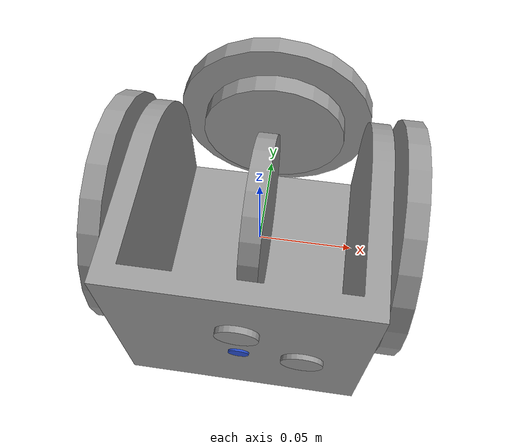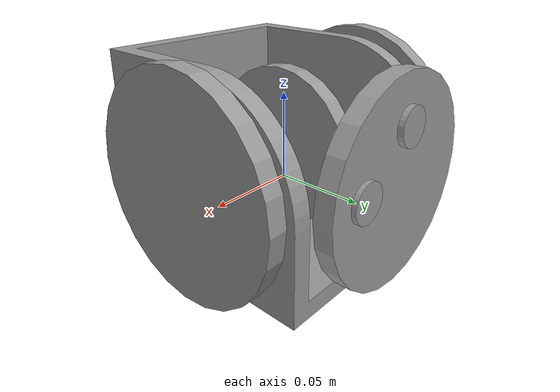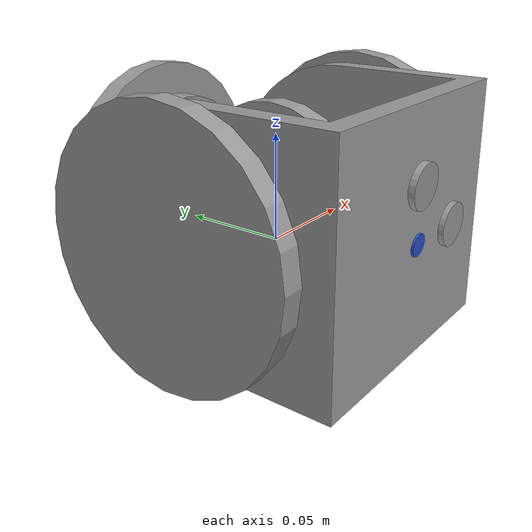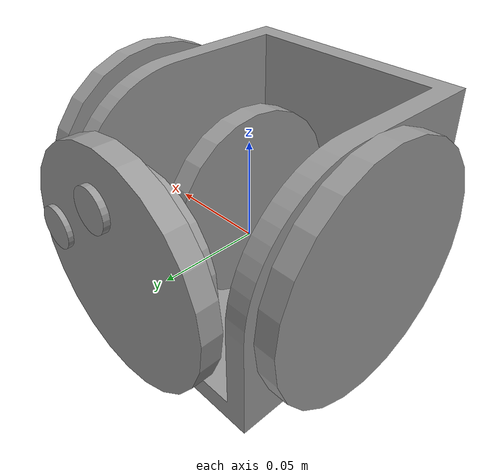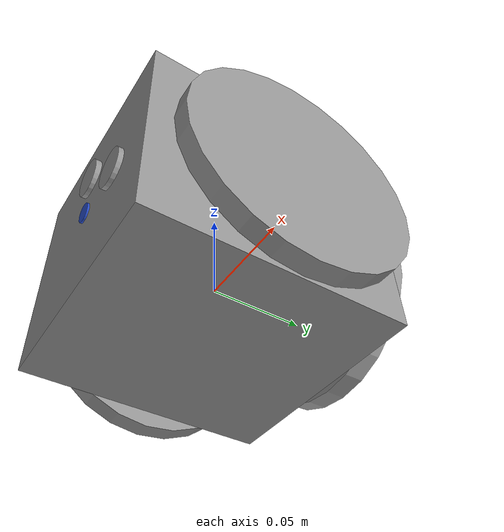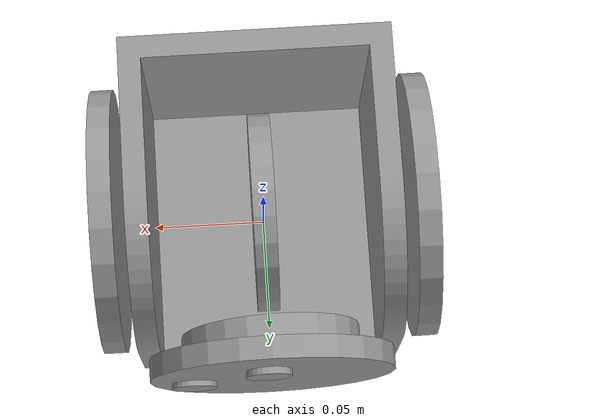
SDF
<?xml version='1.0'?>
<sdf version='1.6'>
  <model name='ditto19'>
    <link name='body'>
      <inertial>
        <mass>5</mass>
        <inertia>
          <ixx>0.166667</ixx>
          <ixy>0</ixy>
          <ixz>0</ixz>
          <iyy>0.166667</iyy>
          <iyz>0</iyz>
          <izz>0.166667</izz>
        </inertia>
        <pose frame=''>0 0 0 0 -0 0</pose>
      </inertial>
      <pose frame=''>-0 -0 -0.036667 0 -0 0</pose>
      <gravity>1</gravity>
      <self_collide>0</self_collide>
      <kinematic>0</kinematic>
      <enable_wind>0</enable_wind>
      <visual name='visual'>
        <pose frame=''>0 0 0 0 -0 0</pose>
        <geometry>
          <mesh>
            <uri>/home/xtreme/catkin_ws/src/Graduation CADs/OneDrive-2019-11-22/bodyCorrected.obj</uri>
            <scale>0.001 0.001 0.001</scale>
          </mesh>
        </geometry>
        <material>
          <lighting>1</lighting>
          <script>
            <uri>file://media/materials/scripts/gazebo.material</uri>
            <name>Gazebo/Grey</name>
          </script>
          <shader type='pixel'>
            <normal_map>__default__</normal_map>
          </shader>
          <ambient>0.3 0.3 0.3 1</ambient>
          <diffuse>0.7 0.7 0.7 1</diffuse>
          <specular>0.01 0.01 0.01 1</specular>
          <emissive>0 0 0 1</emissive>
        </material>
        <transparency>0</transparency>
        <cast_shadows>1</cast_shadows>
      </visual>
      <collision name='collision'>
        <laser_retro>0</laser_retro>
        <max_contacts>10</max_contacts>
        <pose frame=''>0 0 0 0 -0 0</pose>
        <geometry>
          <mesh>
            <uri>/home/xtreme/catkin_ws/src/Graduation CADs/OneDrive-2019-11-22/bodyCorrected.obj</uri>
            <scale>0.001 0.001 0.001</scale>
          </mesh>
        </geometry>
        <surface>
          <friction>
            <ode>
              <mu>1</mu>
              <mu2>1</mu2>
              <fdir1>0 0 0</fdir1>
              <slip1>0</slip1>
              <slip2>0</slip2>
            </ode>
            <torsional>
              <coefficient>1</coefficient>
              <patch_radius>0</patch_radius>
              <surface_radius>0</surface_radius>
              <use_patch_radius>1</use_patch_radius>
              <ode>
                <slip>0</slip>
              </ode>
            </torsional>
          </friction>
          <bounce>
            <restitution_coefficient>0</restitution_coefficient>
            <threshold>1e+06</threshold>
          </bounce>
          <contact>
            <collide_without_contact>0</collide_without_contact>
            <collide_without_contact_bitmask>1</collide_without_contact_bitmask>
            <collide_bitmask>1</collide_bitmask>
            <ode>
              <soft_cfm>0</soft_cfm>
              <soft_erp>0.2</soft_erp>
              <kp>1e+13</kp>
              <kd>1</kd>
              <max_vel>0.01</max_vel>
              <min_depth>0</min_depth>
            </ode>
            <bullet>
              <split_impulse>1</split_impulse>
              <split_impulse_penetration_threshold>-0.01</split_impulse_penetration_threshold>
              <soft_cfm>0</soft_cfm>
              <soft_erp>0.2</soft_erp>
              <kp>1e+13</kp>
              <kd>1</kd>
            </bullet>
          </contact>
        </surface>
      </collision>
    </link>
    <link name='body_magnet_north'>
      <inertial>
        <mass>1e-07</mass>
        <inertia>
          <ixx>0</ixx>
          <ixy>0</ixy>
          <ixz>0</ixz>
          <iyy>0</iyy>
          <iyz>0</iyz>
          <izz>0</izz>
        </inertia>
        <pose frame=''>0 0 0 0 -0 0</pose>
      </inertial>
      <pose frame=''>0.03 -0.0715 0.015 1.62063 -3e-05 0.000164</pose>
      <gravity>1</gravity>
      <self_collide>0</self_collide>
      <kinematic>0</kinematic>
      <enable_wind>0</enable_wind>
      <sensor name='my_plugin_2' type='contact'>
        <plugin name='ContactPlugin_2' filename='libcontact.so'>
          <robotNamespace>/</robotNamespace>
          <magnetic_face>body_magnet_south</magnetic_face>
        </plugin>
        <contact>
          <collision>box_collision</collision>
          <topic>__default_topic__</topic>
        </contact>
        <update_rate>5</update_rate>
      </sensor>
      <visual name='visual'>
        <pose frame=''>0 0 0 0 -0 0</pose>
        <geometry>
          <cylinder>
            <radius>0.01</radius>
            <length>0.0025</length>
          </cylinder>
        </geometry>
        <material>
          <lighting>1</lighting>
          <script>
            <uri>file://media/materials/scripts/gazebo.material</uri>
            <name>Gazebo/Grey</name>
          </script>
          <shader type='pixel'>
            <normal_map>__default__</normal_map>
          </shader>
          <ambient>0.3 0.3 0.3 1</ambient>
          <diffuse>0.7 0.7 0.7 1</diffuse>
          <specular>0.01 0.01 0.01 1</specular>
          <emissive>0 0 0 1</emissive>
        </material>
        <transparency>0</transparency>
        <cast_shadows>1</cast_shadows>
      </visual>
      <collision name='box_collision'>
        <laser_retro>0</laser_retro>
        <max_contacts>10</max_contacts>
        <pose frame=''>0 0 0 0 -0 0</pose>
        <geometry>
          <cylinder>
            <radius>0.01</radius>
            <length>0.0025</length>
          </cylinder>
        </geometry>
        <surface>
          <friction>
            <ode>
              <mu>1</mu>
              <mu2>1</mu2>
              <fdir1>0 0 0</fdir1>
              <slip1>0</slip1>
              <slip2>0</slip2>
            </ode>
            <torsional>
              <coefficient>1</coefficient>
              <patch_radius>0</patch_radius>
              <surface_radius>0</surface_radius>
              <use_patch_radius>1</use_patch_radius>
              <ode>
                <slip>0</slip>
              </ode>
            </torsional>
          </friction>
          <bounce>
            <restitution_coefficient>0</restitution_coefficient>
            <threshold>1e+06</threshold>
          </bounce>
          <contact>
            <collide_without_contact>0</collide_without_contact>
            <collide_without_contact_bitmask>1</collide_without_contact_bitmask>
            <collide_bitmask>1</collide_bitmask>
            <ode>
              <soft_cfm>0</soft_cfm>
              <soft_erp>0.2</soft_erp>
              <kp>1e+13</kp>
              <kd>1</kd>
              <max_vel>0.01</max_vel>
              <min_depth>0</min_depth>
            </ode>
            <bullet>
              <split_impulse>1</split_impulse>
              <split_impulse_penetration_threshold>-0.01</split_impulse_penetration_threshold>
              <soft_cfm>0</soft_cfm>
              <soft_erp>0.2</soft_erp>
              <kp>1e+13</kp>
              <kd>1</kd>
            </bullet>
          </contact>
        </surface>
      </collision>
    </link>
    <link name='body_magnet_south'>
      <inertial>
        <mass>1e-07</mass>
        <inertia>
          <ixx>0</ixx>
          <ixy>0</ixy>
          <ixz>0</ixz>
          <iyy>0</iyy>
          <iyz>0</iyz>
          <izz>0</izz>
        </inertia>
        <pose frame=''>0 0 0 0 -0 0</pose>
      </inertial>
      <pose frame=''>-0 -0.0715 0.04 1.63618 -4.3e-05 0.000218</pose>
      <gravity>1</gravity>
      <self_collide>0</self_collide>
      <kinematic>0</kinematic>
      <enable_wind>0</enable_wind>
      <sensor name='my_plugin_2' type='contact'>
        <plugin name='ContactPlugin_2' filename='libcontact.so'>
          <robotNamespace>/</robotNamespace>
          <magnetic_face>body_magnet_north</magnetic_face>
        </plugin>
        <contact>
          <collision>box_collision</collision>
          <topic>__default_topic__</topic>
        </contact>
        <update_rate>5</update_rate>
      </sensor>
      <visual name='visual'>
        <pose frame=''>0 0 0 0 -0 0</pose>
        <geometry>
          <cylinder>
            <radius>0.01</radius>
            <length>0.003</length>
          </cylinder>
        </geometry>
        <material>
          <lighting>1</lighting>
          <script>
            <uri>file://media/materials/scripts/gazebo.material</uri>
            <name>Gazebo/Grey</name>
          </script>
          <shader type='pixel'>
            <normal_map>__default__</normal_map>
          </shader>
          <ambient>0.3 0.3 0.3 1</ambient>
          <diffuse>0.7 0.7 0.7 1</diffuse>
          <specular>0.01 0.01 0.01 1</specular>
          <emissive>0 0 0 1</emissive>
        </material>
        <transparency>0</transparency>
        <cast_shadows>1</cast_shadows>
      </visual>
      <collision name='box_collision'>
        <laser_retro>0</laser_retro>
        <max_contacts>10</max_contacts>
        <pose frame=''>0 0 0 0 -0 0</pose>
        <geometry>
          <cylinder>
            <radius>0.01</radius>
            <length>0.003</length>
          </cylinder>
        </geometry>
        <surface>
          <friction>
            <ode>
              <mu>1</mu>
              <mu2>1</mu2>
              <fdir1>0 0 0</fdir1>
              <slip1>0</slip1>
              <slip2>0</slip2>
            </ode>
            <torsional>
              <coefficient>1</coefficient>
              <patch_radius>0</patch_radius>
              <surface_radius>0</surface_radius>
              <use_patch_radius>1</use_patch_radius>
              <ode>
                <slip>0</slip>
              </ode>
            </torsional>
          </friction>
          <bounce>
            <restitution_coefficient>0</restitution_coefficient>
            <threshold>1e+06</threshold>
          </bounce>
          <contact>
            <collide_without_contact>0</collide_without_contact>
            <collide_without_contact_bitmask>1</collide_without_contact_bitmask>
            <collide_bitmask>1</collide_bitmask>
            <ode>
              <soft_cfm>0</soft_cfm>
              <soft_erp>0.2</soft_erp>
              <kp>1e+13</kp>
              <kd>1</kd>
              <max_vel>0.01</max_vel>
              <min_depth>0</min_depth>
            </ode>
            <bullet>
              <split_impulse>1</split_impulse>
              <split_impulse_penetration_threshold>-0.01</split_impulse_penetration_threshold>
              <soft_cfm>0</soft_cfm>
              <soft_erp>0.2</soft_erp>
              <kp>1e+13</kp>
              <kd>1</kd>
            </bullet>
          </contact>
        </surface>
      </collision>
    </link>
    <link name='hokuyo_sensor'>
      <inertial>
        <mass>1e-07</mass>
        <inertia>
          <ixx>0</ixx>
          <ixy>0</ixy>
          <ixz>0</ixz>
          <iyy>0</iyy>
          <iyz>0</iyz>
          <izz>0</izz>
        </inertia>
        <pose frame=''>0 0 0 0 -0 0</pose>
      </inertial>
      <pose frame=''>-0 -0.071 0.015 1.65062 -5.1e-05 0.000589</pose>
      <gravity>1</gravity>
      <self_collide>0</self_collide>
      <kinematic>0</kinematic>
      <enable_wind>0</enable_wind>
    <sensor type="ray" name="chassis_hokuyo_sensor">
   <pose>-0 -0.071 0.015 1.65062 -5.1e-05 0.000589</pose>
   <visualize>false</visualize>
   <update_rate>40</update_rate>
   <ray>
     <scan>
       <horizontal>
         <samples>720</samples>
         <resolution>1</resolution>
         <min_angle>-1.57</min_angle>
         <max_angle>1.57</max_angle>
        </horizontal>
      </scan>
     <range>
        <min>0.10</min>
        <max>10.0</max>
        <resolution>0.001</resolution>
      </range>
     </ray>
     <plugin name="gazebo_ros_head_hokuyo_controller"
          filename="libgazebo_ros_laser.so">
        <topicName>/scan</topicName>
        <frameName>hokuyo_sensor</frameName>
       </plugin>
      </sensor>
      <visual name='visual'>
        <pose frame=''>0 0 0 0 -0 0</pose>
        <geometry>
          <cylinder>
            <radius>0.005</radius>
            <length>0.001</length>
          </cylinder>
        </geometry>
        <material>
          <lighting>1</lighting>
          <script>
            <uri>file://media/materials/scripts/gazebo.material</uri>
            <name>Gazebo/Blue</name>
          </script>
          <shader type='pixel'>
            <normal_map>__default__</normal_map>
          </shader>
          <ambient>0.3 0.3 0.3 1</ambient>
          <diffuse>0.7 0.7 0.7 1</diffuse>
          <specular>0.01 0.01 0.01 1</specular>
          <emissive>0 0 0 1</emissive>
        </material>
        <transparency>0</transparency>
        <cast_shadows>1</cast_shadows>
      </visual>
      <collision name='box_collision'>
        <laser_retro>0</laser_retro>
        <max_contacts>10</max_contacts>
        <pose frame=''>0 0 0 0 -0 0</pose>
        <geometry>
          <cylinder>
            <radius>0.005</radius>
            <length>0.001</length>
          </cylinder>
        </geometry>
        <surface>
          <friction>
            <ode>
              <mu>1</mu>
              <mu2>1</mu2>
              <fdir1>0 0 0</fdir1>
              <slip1>0</slip1>
              <slip2>0</slip2>
            </ode>
            <torsional>
              <coefficient>1</coefficient>
              <patch_radius>0</patch_radius>
              <surface_radius>0</surface_radius>
              <use_patch_radius>1</use_patch_radius>
              <ode>
                <slip>0</slip>
              </ode>
            </torsional>
          </friction>
          <bounce>
            <restitution_coefficient>0</restitution_coefficient>
            <threshold>1e+06</threshold>
          </bounce>
          <contact>
            <collide_without_contact>0</collide_without_contact>
            <collide_without_contact_bitmask>1</collide_without_contact_bitmask>
            <collide_bitmask>1</collide_bitmask>
            <ode>
              <soft_cfm>0</soft_cfm>
              <soft_erp>0.2</soft_erp>
              <kp>1e+13</kp>
              <kd>1</kd>
              <max_vel>0.01</max_vel>
              <min_depth>0</min_depth>
            </ode>
            <bullet>
              <split_impulse>1</split_impulse>
              <split_impulse_penetration_threshold>-0.01</split_impulse_penetration_threshold>
              <soft_cfm>0</soft_cfm>
              <soft_erp>0.2</soft_erp>
              <kp>1e+13</kp>
              <kd>1</kd>
            </bullet>
          </contact>
        </surface>
      </collision>
    </link>
    <link name='face_pan'>
      <inertial>
        <mass>0.5</mass>
        <inertia>
          <ixx>0.145833</ixx>
          <ixy>0</ixy>
          <ixz>0</ixz>
          <iyy>0.145833</iyy>
          <iyz>0</iyz>
          <izz>0.125</izz>
        </inertia>
        <pose frame=''>0 0 0 0 -0 0</pose>
      </inertial>
      <pose frame=''>0 0.06 0.02 3.13999 1.52773 1.59125</pose>
      <gravity>1</gravity>
      <self_collide>0</self_collide>
      <kinematic>0</kinematic>
      <enable_wind>0</enable_wind>
      <visual name='visual'>
        <pose frame=''>0 0 0 0 -0 0</pose>
        <geometry>
          <cylinder>
            <radius>0.04</radius>
            <length>0.01</length>
          </cylinder>
        </geometry>
        <material>
          <lighting>1</lighting>
          <script>
            <uri>file://media/materials/scripts/gazebo.material</uri>
            <name>Gazebo/Grey</name>
          </script>
          <shader type='pixel'>
            <normal_map>__default__</normal_map>
          </shader>
          <ambient>0.3 0.3 0.3 1</ambient>
          <diffuse>0.7 0.7 0.7 1</diffuse>
          <specular>0.01 0.01 0.01 1</specular>
          <emissive>0 0 0 1</emissive>
        </material>
        <transparency>0</transparency>
        <cast_shadows>1</cast_shadows>
      </visual>
      <collision name='collision'>
        <laser_retro>0</laser_retro>
        <max_contacts>10</max_contacts>
        <pose frame=''>0 0 0 0 -0 0</pose>
        <geometry>
          <cylinder>
            <radius>0.04</radius>
            <length>0.01</length>
          </cylinder>
        </geometry>
        <surface>
          <friction>
            <ode>
              <mu>1</mu>
              <mu2>1</mu2>
              <fdir1>0 0 0</fdir1>
              <slip1>0</slip1>
              <slip2>0</slip2>
            </ode>
            <torsional>
              <coefficient>1</coefficient>
              <patch_radius>0</patch_radius>
              <surface_radius>0</surface_radius>
              <use_patch_radius>1</use_patch_radius>
              <ode>
                <slip>0</slip>
              </ode>
            </torsional>
          </friction>
          <bounce>
            <restitution_coefficient>0</restitution_coefficient>
            <threshold>1e+06</threshold>
          </bounce>
          <contact>
            <collide_without_contact>0</collide_without_contact>
            <collide_without_contact_bitmask>1</collide_without_contact_bitmask>
            <collide_bitmask>1</collide_bitmask>
            <ode>
              <soft_cfm>0</soft_cfm>
              <soft_erp>0.2</soft_erp>
              <kp>1e+13</kp>
              <kd>1</kd>
              <max_vel>0.01</max_vel>
              <min_depth>0</min_depth>
            </ode>
            <bullet>
              <split_impulse>1</split_impulse>
              <split_impulse_penetration_threshold>-0.01</split_impulse_penetration_threshold>
              <soft_cfm>0</soft_cfm>
              <soft_erp>0.2</soft_erp>
              <kp>1e+13</kp>
              <kd>1</kd>
            </bullet>
          </contact>
        </surface>
      </collision>
    </link>
    <link name='face_tilt'>
      <inertial>
        <mass>0.0001</mass>
        <inertia>
          <ixx>0.145833</ixx>
          <ixy>0</ixy>
          <ixz>0</ixz>
          <iyy>0.145833</iyy>
          <iyz>0</iyz>
          <izz>0.125</izz>
        </inertia>
        <pose frame=''>0 0 0 0 -0 0</pose>
      </inertial>
      <pose frame=''>-0 0 0.02 -3.14159 1.56989 -3.14159</pose>
      <gravity>1</gravity>
      <self_collide>0</self_collide>
      <kinematic>0</kinematic>
      <enable_wind>0</enable_wind>
      <visual name='visual'>
        <pose frame=''>0 0 0 0 -0 0</pose>
        <geometry>
          <cylinder>
            <radius>0.045</radius>
            <length>0.01</length>
          </cylinder>
        </geometry>
        <material>
          <lighting>1</lighting>
          <script>
            <uri>file://media/materials/scripts/gazebo.material</uri>
            <name>Gazebo/Grey</name>
          </script>
          <shader type='pixel'>
            <normal_map>__default__</normal_map>
          </shader>
          <ambient>0.3 0.3 0.3 1</ambient>
          <diffuse>0.7 0.7 0.7 1</diffuse>
          <specular>0.01 0.01 0.01 1</specular>
          <emissive>0 0 0 1</emissive>
        </material>
        <transparency>0</transparency>
        <cast_shadows>1</cast_shadows>
      </visual>
      <collision name='collision'>
        <laser_retro>0</laser_retro>
        <max_contacts>10</max_contacts>
        <pose frame=''>0 0 0 0 -0 0</pose>
        <geometry>
          <cylinder>
            <radius>0.045</radius>
            <length>0.01</length>
          </cylinder>
        </geometry>
        <surface>
          <friction>
            <ode>
              <mu>1</mu>
              <mu2>1</mu2>
              <fdir1>0 0 0</fdir1>
              <slip1>0</slip1>
              <slip2>0</slip2>
            </ode>
            <torsional>
              <coefficient>1</coefficient>
              <patch_radius>0</patch_radius>
              <surface_radius>0</surface_radius>
              <use_patch_radius>1</use_patch_radius>
              <ode>
                <slip>0</slip>
              </ode>
            </torsional>
          </friction>
          <bounce>
            <restitution_coefficient>0</restitution_coefficient>
            <threshold>1e+06</threshold>
          </bounce>
          <contact>
            <collide_without_contact>0</collide_without_contact>
            <collide_without_contact_bitmask>1</collide_without_contact_bitmask>
            <collide_bitmask>1</collide_bitmask>
            <ode>
              <soft_cfm>0</soft_cfm>
              <soft_erp>0.2</soft_erp>
              <kp>1e+13</kp>
              <kd>1</kd>
              <max_vel>0.01</max_vel>
              <min_depth>0</min_depth>
            </ode>
            <bullet>
              <split_impulse>1</split_impulse>
              <split_impulse_penetration_threshold>-0.01</split_impulse_penetration_threshold>
              <soft_cfm>0</soft_cfm>
              <soft_erp>0.2</soft_erp>
              <kp>1e+13</kp>
              <kd>1</kd>
            </bullet>
          </contact>
        </surface>
      </collision>
    </link>
    <link name='front_face'>
      <inertial>
        <mass>0.5</mass>
        <inertia>
          <ixx>0.166667</ixx>
          <ixy>0</ixy>
          <ixz>0</ixz>
          <iyy>0.166667</iyy>
          <iyz>0</iyz>
          <izz>0.166667</izz>
        </inertia>
        <pose frame=''>0 0 0 0 -0 0</pose>
      </inertial>
      <pose frame=''>0 0.07 0.02 -1.9e-05 -2e-06 -2.4e-05</pose>
      <gravity>1</gravity>
      <self_collide>0</self_collide>
      <kinematic>0</kinematic>
      <enable_wind>0</enable_wind>
      <visual name='visual'>
        <pose frame=''>0 0 0 1.5707 -0 0</pose>
        <geometry>
          <cylinder>
            <radius>0.055</radius>
            <length>0.01</length>
          </cylinder>
        </geometry>
        <material>
          <lighting>1</lighting>
          <script>
            <uri>file://media/materials/scripts/gazebo.material</uri>
            <name>Gazebo/Grey</name>
          </script>
          <shader type='pixel'>
            <normal_map>__default__</normal_map>
          </shader>
          <ambient>0.3 0.3 0.3 1</ambient>
          <diffuse>0.7 0.7 0.7 1</diffuse>
          <specular>0.01 0.01 0.01 1</specular>
          <emissive>0 0 0 1</emissive>
        </material>
        <transparency>0</transparency>
        <cast_shadows>1</cast_shadows>
      </visual>
      <collision name='collision'>
        <laser_retro>0</laser_retro>
        <max_contacts>10</max_contacts>
        <pose frame=''>0 0 0 1.5707 -0 0</pose>
        <geometry>
          <cylinder>
            <radius>0.05</radius>
            <length>0.01</length>
          </cylinder>
        </geometry>
        <surface>
          <friction>
            <ode>
              <mu>1</mu>
              <mu2>1</mu2>
              <fdir1>0 0 0</fdir1>
              <slip1>0</slip1>
              <slip2>0</slip2>
            </ode>
            <torsional>
              <coefficient>1</coefficient>
              <patch_radius>0</patch_radius>
              <surface_radius>0</surface_radius>
              <use_patch_radius>1</use_patch_radius>
              <ode>
                <slip>0</slip>
              </ode>
            </torsional>
          </friction>
          <bounce>
            <restitution_coefficient>0</restitution_coefficient>
            <threshold>1e+06</threshold>
          </bounce>
          <contact>
            <collide_without_contact>0</collide_without_contact>
            <collide_without_contact_bitmask>1</collide_without_contact_bitmask>
            <collide_bitmask>1</collide_bitmask>
            <ode>
              <soft_cfm>0</soft_cfm>
              <soft_erp>0.2</soft_erp>
              <kp>1e+13</kp>
              <kd>1</kd>
              <max_vel>0.01</max_vel>
              <min_depth>0</min_depth>
            </ode>
            <bullet>
              <split_impulse>1</split_impulse>
              <split_impulse_penetration_threshold>-0.01</split_impulse_penetration_threshold>
              <soft_cfm>0</soft_cfm>
              <soft_erp>0.2</soft_erp>
              <kp>1e+13</kp>
              <kd>1</kd>
            </bullet>
          </contact>
        </surface>
      </collision>
    </link>
    <link name='front_face_magnet_north'>
      <inertial>
        <mass>1e-07</mass>
        <inertia>
          <ixx>0</ixx>
          <ixy>0</ixy>
          <ixz>0</ixz>
          <iyy>0</iyy>
          <iyz>0</iyz>
          <izz>0</izz>
        </inertia>
        <pose frame=''>0 0 0 0 -0 0</pose>
      </inertial>
      <pose frame=''>0.03 0.078 0.015 1.5707 -1.3e-05 8.2e-05</pose>
      <gravity>1</gravity>
      <self_collide>0</self_collide>
      <kinematic>0</kinematic>
      <enable_wind>0</enable_wind>
      <sensor name='my_plugin_1' type='contact'>
        <plugin name='ContactPlugin_1' filename='libcontact.so'>
          <robotNamespace>/</robotNamespace>
          <magnetic_face>front_face_magnet_north</magnetic_face>
        </plugin>
        <contact>
          <collision>box_collision</collision>
          <topic>__default_topic__</topic>
        </contact>
        <update_rate>5</update_rate>
      </sensor>
      <visual name='visual'>
        <pose frame=''>0.005 0.01 0 0 -0 0</pose>
        <geometry>
          <cylinder>
            <radius>0.01</radius>
            <length>0.0025</length>
          </cylinder>
        </geometry>
        <material>
          <lighting>1</lighting>
          <script>
            <uri>file://media/materials/scripts/gazebo.material</uri>
            <name>Gazebo/Grey</name>
          </script>
          <shader type='pixel'>
            <normal_map>__default__</normal_map>
          </shader>
          <ambient>0.3 0.3 0.3 1</ambient>
          <diffuse>0.7 0.7 0.7 1</diffuse>
          <specular>0.01 0.01 0.01 1</specular>
          <emissive>0 0 0 1</emissive>
        </material>
        <transparency>0</transparency>
        <cast_shadows>1</cast_shadows>
      </visual>
      <collision name='box_collision'>
        <laser_retro>0</laser_retro>
        <max_contacts>10</max_contacts>
        <pose frame=''>0 0 0 0 -0 0</pose>
        <geometry>
          <cylinder>
            <radius>0.01</radius>
            <length>0.0025</length>
          </cylinder>
        </geometry>
        <surface>
          <friction>
            <ode>
              <mu>1</mu>
              <mu2>1</mu2>
              <fdir1>0 0 0</fdir1>
              <slip1>0</slip1>
              <slip2>0</slip2>
            </ode>
            <torsional>
              <coefficient>1</coefficient>
              <patch_radius>0</patch_radius>
              <surface_radius>0</surface_radius>
              <use_patch_radius>1</use_patch_radius>
              <ode>
                <slip>0</slip>
              </ode>
            </torsional>
          </friction>
          <bounce>
            <restitution_coefficient>0</restitution_coefficient>
            <threshold>1e+06</threshold>
          </bounce>
          <contact>
            <collide_without_contact>0</collide_without_contact>
            <collide_without_contact_bitmask>1</collide_without_contact_bitmask>
            <collide_bitmask>1</collide_bitmask>
            <ode>
              <soft_cfm>0</soft_cfm>
              <soft_erp>0.2</soft_erp>
              <kp>1e+13</kp>
              <kd>1</kd>
              <max_vel>0.01</max_vel>
              <min_depth>0</min_depth>
            </ode>
            <bullet>
              <split_impulse>1</split_impulse>
              <split_impulse_penetration_threshold>-0.01</split_impulse_penetration_threshold>
              <soft_cfm>0</soft_cfm>
              <soft_erp>0.2</soft_erp>
              <kp>1e+13</kp>
              <kd>1</kd>
            </bullet>
          </contact>
        </surface>
      </collision>
    </link>
    <link name='front_face_magnet_south'>
      <inertial>
        <mass>1e-07</mass>
        <inertia>
          <ixx>0</ixx>
          <ixy>0</ixy>
          <ixz>0</ixz>
          <iyy>0</iyy>
          <iyz>0</iyz>
          <izz>0</izz>
        </inertia>
        <pose frame=''>0 0 0 0 -0 0</pose>
      </inertial>
      <pose frame=''>-0.003 0.078 0.04 1.58625 -2.4e-05 0.000136</pose>
      <gravity>1</gravity>
      <self_collide>0</self_collide>
      <kinematic>0</kinematic>
      <enable_wind>0</enable_wind>
      <sensor name='my_plugin_1' type='contact'>
        <plugin name='ContactPlugin_1' filename='libcontact.so'>
          <robotNamespace>/</robotNamespace>
          <magnetic_face>front_face_magnet_south</magnetic_face>
        </plugin>
        <contact>
          <collision>box_collision</collision>
          <topic>__default_topic__</topic>
        </contact>
        <update_rate>5</update_rate>
      </sensor>
      <visual name='visual'>
        <pose frame=''>0.005 0.01 0 0 -0 0</pose>
        <geometry>
          <cylinder>
            <radius>0.01</radius>
            <length>0.003</length>
          </cylinder>
        </geometry>
        <material>
          <lighting>1</lighting>
          <script>
            <uri>file://media/materials/scripts/gazebo.material</uri>
            <name>Gazebo/Grey</name>
          </script>
          <shader type='pixel'>
            <normal_map>__default__</normal_map>
          </shader>
          <ambient>0.3 0.3 0.3 1</ambient>
          <diffuse>0.7 0.7 0.7 1</diffuse>
          <specular>0.01 0.01 0.01 1</specular>
          <emissive>0 0 0 1</emissive>
        </material>
        <transparency>0</transparency>
        <cast_shadows>1</cast_shadows>
      </visual>
      <collision name='box_collision'>
        <laser_retro>0</laser_retro>
        <max_contacts>10</max_contacts>
        <pose frame=''>0 0 0 0 -0 0</pose>
        <geometry>
          <cylinder>
            <radius>0.01</radius>
            <length>0.003</length>
          </cylinder>
        </geometry>
        <surface>
          <friction>
            <ode>
              <mu>1</mu>
              <mu2>1</mu2>
              <fdir1>0 0 0</fdir1>
              <slip1>0</slip1>
              <slip2>0</slip2>
            </ode>
            <torsional>
              <coefficient>1</coefficient>
              <patch_radius>0</patch_radius>
              <surface_radius>0</surface_radius>
              <use_patch_radius>1</use_patch_radius>
              <ode>
                <slip>0</slip>
              </ode>
            </torsional>
          </friction>
          <bounce>
            <restitution_coefficient>0</restitution_coefficient>
            <threshold>1e+06</threshold>
          </bounce>
          <contact>
            <collide_without_contact>0</collide_without_contact>
            <collide_without_contact_bitmask>1</collide_without_contact_bitmask>
            <collide_bitmask>1</collide_bitmask>
            <ode>
              <soft_cfm>0</soft_cfm>
              <soft_erp>0.2</soft_erp>
              <kp>1e+13</kp>
              <kd>1</kd>
              <max_vel>0.01</max_vel>
              <min_depth>0</min_depth>
            </ode>
            <bullet>
              <split_impulse>1</split_impulse>
              <split_impulse_penetration_threshold>-0.01</split_impulse_penetration_threshold>
              <soft_cfm>0</soft_cfm>
              <soft_erp>0.2</soft_erp>
              <kp>1e+13</kp>
              <kd>1</kd>
            </bullet>
          </contact>
        </surface>
      </collision>
    </link>
    <link name='left_wheel'>
      <inertial>
        <mass>0.5</mass>
        <inertia>
          <ixx>0.145833</ixx>
          <ixy>0</ixy>
          <ixz>0</ixz>
          <iyy>0.145833</iyy>
          <iyz>0</iyz>
          <izz>0.125</izz>
        </inertia>
        <pose frame=''>0 0 0 0 -0 0</pose>
      </inertial>
      <pose frame=''>0.07 0 0.018333 1.5707 0 1.5707</pose>
      <gravity>1</gravity>
      <self_collide>0</self_collide>
      <kinematic>0</kinematic>
      <enable_wind>0</enable_wind>
      <visual name='visual'>
        <pose frame=''>0 0 0 0 -0 0</pose>
        <geometry>
          <cylinder>
            <radius>0.06</radius>
            <length>0.01</length>
          </cylinder>
        </geometry>
        <material>
          <lighting>1</lighting>
          <script>
            <uri>file://media/materials/scripts/gazebo.material</uri>
            <name>Gazebo/Grey</name>
          </script>
          <shader type='pixel'>
            <normal_map>__default__</normal_map>
          </shader>
          <ambient>0.3 0.3 0.3 1</ambient>
          <diffuse>0.7 0.7 0.7 1</diffuse>
          <specular>0.01 0.01 0.01 1</specular>
          <emissive>0 0 0 1</emissive>
        </material>
        <transparency>0</transparency>
        <cast_shadows>1</cast_shadows>
      </visual>
      <collision name='collision'>
        <laser_retro>0</laser_retro>
        <max_contacts>10</max_contacts>
        <pose frame=''>0 0 0 0 -0 0</pose>
        <geometry>
          <cylinder>
            <radius>0.06</radius>
            <length>0.01</length>
          </cylinder>
        </geometry>
        <surface>
          <friction>
            <ode>
              <mu>1</mu>
              <mu2>1</mu2>
              <fdir1>0 0 0</fdir1>
              <slip1>0</slip1>
              <slip2>0</slip2>
            </ode>
            <torsional>
              <coefficient>1</coefficient>
              <patch_radius>0</patch_radius>
              <surface_radius>0</surface_radius>
              <use_patch_radius>1</use_patch_radius>
              <ode>
                <slip>0</slip>
              </ode>
            </torsional>
          </friction>
          <bounce>
            <restitution_coefficient>0</restitution_coefficient>
            <threshold>1e+06</threshold>
          </bounce>
          <contact>
            <collide_without_contact>0</collide_without_contact>
            <collide_without_contact_bitmask>1</collide_without_contact_bitmask>
            <collide_bitmask>1</collide_bitmask>
            <ode>
              <soft_cfm>0</soft_cfm>
              <soft_erp>0.2</soft_erp>
              <kp>1e+13</kp>
              <kd>1</kd>
              <max_vel>0.01</max_vel>
              <min_depth>0</min_depth>
            </ode>
            <bullet>
              <split_impulse>1</split_impulse>
              <split_impulse_penetration_threshold>-0.01</split_impulse_penetration_threshold>
              <soft_cfm>0</soft_cfm>
              <soft_erp>0.2</soft_erp>
              <kp>1e+13</kp>
              <kd>1</kd>
            </bullet>
          </contact>
        </surface>
      </collision>
    </link>
    <link name='right_wheel'>
      <inertial>
        <mass>0.5</mass>
        <inertia>
          <ixx>0.145833</ixx>
          <ixy>0</ixy>
          <ixz>0</ixz>
          <iyy>0.145833</iyy>
          <iyz>0</iyz>
          <izz>0.125</izz>
        </inertia>
        <pose frame=''>0 0 0 0 -0 0</pose>
      </inertial>
      <pose frame=''>-0.07 -0 0.018333 1.5707 0 1.5707</pose>
      <gravity>1</gravity>
      <self_collide>0</self_collide>
      <kinematic>0</kinematic>
      <enable_wind>0</enable_wind>
      <visual name='visual'>
        <pose frame=''>0 0 0 0 -0 0</pose>
        <geometry>
          <cylinder>
            <radius>0.06</radius>
            <length>0.01</length>
          </cylinder>
        </geometry>
        <material>
          <lighting>1</lighting>
          <script>
            <uri>file://media/materials/scripts/gazebo.material</uri>
            <name>Gazebo/Grey</name>
          </script>
          <shader type='pixel'>
            <normal_map>__default__</normal_map>
          </shader>
          <ambient>0.3 0.3 0.3 1</ambient>
          <diffuse>0.7 0.7 0.7 1</diffuse>
          <specular>0.01 0.01 0.01 1</specular>
          <emissive>0 0 0 1</emissive>
        </material>
        <transparency>0</transparency>
        <cast_shadows>1</cast_shadows>
      </visual>
      <collision name='collision'>
        <laser_retro>0</laser_retro>
        <max_contacts>10</max_contacts>
        <pose frame=''>0 0 0 0 -0 0</pose>
        <geometry>
          <cylinder>
            <radius>0.06</radius>
            <length>0.01</length>
          </cylinder>
        </geometry>
        <surface>
          <friction>
            <ode>
              <mu>1</mu>
              <mu2>1</mu2>
              <fdir1>0 0 0</fdir1>
              <slip1>0</slip1>
              <slip2>0</slip2>
            </ode>
            <torsional>
              <coefficient>1</coefficient>
              <patch_radius>0</patch_radius>
              <surface_radius>0</surface_radius>
              <use_patch_radius>1</use_patch_radius>
              <ode>
                <slip>0</slip>
              </ode>
            </torsional>
          </friction>
          <bounce>
            <restitution_coefficient>0</restitution_coefficient>
            <threshold>1e+06</threshold>
          </bounce>
          <contact>
            <collide_without_contact>0</collide_without_contact>
            <collide_without_contact_bitmask>1</collide_without_contact_bitmask>
            <collide_bitmask>1</collide_bitmask>
            <ode>
              <soft_cfm>0</soft_cfm>
              <soft_erp>0.2</soft_erp>
              <kp>1e+13</kp>
              <kd>1</kd>
              <max_vel>0.01</max_vel>
              <min_depth>0</min_depth>
            </ode>
            <bullet>
              <split_impulse>1</split_impulse>
              <split_impulse_penetration_threshold>-0.01</split_impulse_penetration_threshold>
              <soft_cfm>0</soft_cfm>
              <soft_erp>0.2</soft_erp>
              <kp>1e+13</kp>
              <kd>1</kd>
            </bullet>
          </contact>
        </surface>
      </collision>
    </link>
    <joint name='hokuyo_sensor_joint' type='revolute'>
      <parent>body</parent>
      <child>hokuyo_sensor</child>
      <pose frame=''>0 0 0 0 -0 0</pose>
      <axis>
        <xyz>1 0 0</xyz>
        <use_parent_model_frame>0</use_parent_model_frame>
        <limit>
          <lower>0</lower>
          <upper>-0</upper>
          <effort>-1</effort>
          <velocity>-1</velocity>
        </limit>
        <dynamics>
          <spring_reference>0</spring_reference>
          <spring_stiffness>0</spring_stiffness>
          <damping>0</damping>
          <friction>0</friction>
        </dynamics>
      </axis>
      <physics>
        <ode>
          <limit>
            <cfm>0</cfm>
            <erp>0.2</erp>
          </limit>
          <suspension>
            <cfm>0</cfm>
            <erp>0.2</erp>
          </suspension>
        </ode>
      </physics>
    </joint>
    <joint name='body_JOINT_0' type='revolute'>
      <parent>body</parent>
      <child>body_magnet_south</child>
      <pose frame=''>0 0 0 0 -0 0</pose>
      <axis>
        <xyz>1 0 0</xyz>
        <use_parent_model_frame>0</use_parent_model_frame>
        <limit>
          <lower>0</lower>
          <upper>0</upper>
          <effort>-1</effort>
          <velocity>-1</velocity>
        </limit>
        <dynamics>
          <spring_reference>0</spring_reference>
          <spring_stiffness>0</spring_stiffness>
          <damping>0</damping>
          <friction>0</friction>
        </dynamics>
      </axis>
      <physics>
        <ode>
          <limit>
            <cfm>0</cfm>
            <erp>0.2</erp>
          </limit>
          <suspension>
            <cfm>0</cfm>
            <erp>0.2</erp>
          </suspension>
        </ode>
      </physics>
    </joint>
    <joint name='body_JOINT_1' type='revolute'>
      <parent>body</parent>
      <child>body_magnet_north</child>
      <pose frame=''>0 0 0 0 -0 0</pose>
      <axis>
        <xyz>1 0 0</xyz>
        <use_parent_model_frame>0</use_parent_model_frame>
        <limit>
          <lower>0</lower>
          <upper>0</upper>
          <effort>-1</effort>
          <velocity>-1</velocity>
        </limit>
        <dynamics>
          <spring_reference>0</spring_reference>
          <spring_stiffness>0</spring_stiffness>
          <damping>0</damping>
          <friction>0</friction>
        </dynamics>
      </axis>
      <physics>
        <ode>
          <limit>
            <cfm>0</cfm>
            <erp>0.2</erp>
          </limit>
          <suspension>
            <cfm>0</cfm>
            <erp>0.2</erp>
          </suspension>
        </ode>
      </physics>
    </joint>
    <joint name='fixed_joint' type='revolute'>
      <parent>face_tilt</parent>
      <child>face_pan</child>
      <pose frame=''>0 0 0 0 -0 0</pose>
      <axis>
        <xyz>0 0 1</xyz>
        <use_parent_model_frame>0</use_parent_model_frame>
        <limit>
          <lower>0</lower>
          <upper>0</upper>
          <effort>-1</effort>
          <velocity>-1</velocity>
        </limit>
        <dynamics>
          <spring_reference>0</spring_reference>
          <spring_stiffness>0</spring_stiffness>
          <damping>0</damping>
          <friction>0</friction>
        </dynamics>
      </axis>
      <physics>
        <ode>
          <limit>
            <cfm>0</cfm>
            <erp>0.2</erp>
          </limit>
          <suspension>
            <cfm>0</cfm>
            <erp>0.2</erp>
          </suspension>
        </ode>
      </physics>
    </joint>
    <joint name='front_face_JOINT_0' type='revolute'>
      <parent>front_face</parent>
      <child>front_face_magnet_north</child>
      <pose frame=''>0 0 0 0 -0 0</pose>
      <axis>
        <xyz>1 0 0</xyz>
        <use_parent_model_frame>0</use_parent_model_frame>
        <limit>
          <lower>0</lower>
          <upper>0</upper>
          <effort>-1</effort>
          <velocity>-1</velocity>
        </limit>
        <dynamics>
          <spring_reference>0</spring_reference>
          <spring_stiffness>0</spring_stiffness>
          <damping>0</damping>
          <friction>0</friction>
        </dynamics>
      </axis>
      <physics>
        <ode>
          <limit>
            <cfm>0</cfm>
            <erp>0.2</erp>
          </limit>
          <suspension>
            <cfm>0</cfm>
            <erp>0.2</erp>
          </suspension>
        </ode>
      </physics>
    </joint>
    <joint name='front_face_JOINT_1' type='revolute'>
      <parent>front_face</parent>
      <child>front_face_magnet_south</child>
      <pose frame=''>0 0 0 0 -0 0</pose>
      <axis>
        <xyz>1 0 0</xyz>
        <use_parent_model_frame>0</use_parent_model_frame>
        <limit>
          <lower>0</lower>
          <upper>0</upper>
          <effort>-1</effort>
          <velocity>-1</velocity>
        </limit>
        <dynamics>
          <spring_reference>0</spring_reference>
          <spring_stiffness>0</spring_stiffness>
          <damping>0</damping>
          <friction>0</friction>
        </dynamics>
      </axis>
      <physics>
        <ode>
          <limit>
            <cfm>0</cfm>
            <erp>0.2</erp>
          </limit>
          <suspension>
            <cfm>0</cfm>
            <erp>0.2</erp>
          </suspension>
        </ode>
      </physics>
    </joint>
    <joint name='left_wheel_joint' type='revolute'>
      <parent>body</parent>
      <child>left_wheel</child>
      <pose frame=''>0 0 0 0 -0 0</pose>
      <axis>
        <xyz>0 0 1</xyz>
        <use_parent_model_frame>0</use_parent_model_frame>
        <limit>
          <lower>-1.79769e+308</lower>
          <upper>1.79769e+308</upper>
          <effort>-1</effort>
          <velocity>-1</velocity>
        </limit>
        <dynamics>
          <spring_reference>0</spring_reference>
          <spring_stiffness>0</spring_stiffness>
          <damping>0</damping>
          <friction>0</friction>
        </dynamics>
      </axis>
      <physics>
        <ode>
          <limit>
            <cfm>0</cfm>
            <erp>0.2</erp>
          </limit>
          <suspension>
            <cfm>0</cfm>
            <erp>0.2</erp>
          </suspension>
        </ode>
      </physics>
    </joint>
    <joint name='pan_joint' type='revolute'>
      <parent>face_pan</parent>
      <child>front_face</child>
      <pose frame=''>0 0 0 0 -0 0</pose>
      <axis>
        <xyz>0 1 0</xyz>
        <use_parent_model_frame>0</use_parent_model_frame>
        <limit>
          <lower>-1.79769e+308</lower>
          <upper>1.79769e+308</upper>
          <effort>-1</effort>
          <velocity>-1</velocity>
        </limit>
        <dynamics>
          <spring_reference>0</spring_reference>
          <spring_stiffness>0</spring_stiffness>
          <damping>0</damping>
          <friction>0</friction>
        </dynamics>
      </axis>
      <physics>
        <ode>
          <limit>
            <cfm>0</cfm>
            <erp>0.2</erp>
          </limit>
          <suspension>
            <cfm>0</cfm>
            <erp>0.2</erp>
          </suspension>
        </ode>
      </physics>
    </joint>
    <joint name='right_wheel_joint' type='revolute'>
      <parent>body</parent>
      <child>right_wheel</child>
      <pose frame=''>0 0 0 0 -0 0</pose>
      <axis>
        <xyz>0 0 1</xyz>
        <use_parent_model_frame>0</use_parent_model_frame>
        <limit>
          <lower>-1.79769e+308</lower>
          <upper>1.79769e+308</upper>
          <effort>-1</effort>
          <velocity>-1</velocity>
        </limit>
        <dynamics>
          <spring_reference>0</spring_reference>
          <spring_stiffness>0</spring_stiffness>
          <damping>0</damping>
          <friction>0</friction>
        </dynamics>
      </axis>
      <physics>
        <ode>
          <limit>
            <cfm>0</cfm>
            <erp>0.2</erp>
          </limit>
          <suspension>
            <cfm>0</cfm>
            <erp>0.2</erp>
          </suspension>
        </ode>
      </physics>
    </joint>
    <joint name='tilt_joint' type='revolute'>
      <parent>body</parent>
      <child>face_tilt</child>
      <pose frame=''>0 0 0 0 -0 0</pose>
      <axis>
        <xyz>0 0 1</xyz>
        <use_parent_model_frame>0</use_parent_model_frame>
        <limit>
          <lower>0</lower>
          <upper>1.5707</upper>
          <effort>-1</effort>
          <velocity>-1</velocity>
        </limit>
        <dynamics>
          <spring_reference>0</spring_reference>
          <spring_stiffness>0</spring_stiffness>
          <damping>0</damping>
          <friction>0</friction>
        </dynamics>
      </axis>
      <physics>
        <ode>
          <limit>
            <cfm>0</cfm>
            <erp>0.2</erp>
          </limit>
          <suspension>
            <cfm>0</cfm>
            <erp>0.2</erp>
          </suspension>
        </ode>
      </physics>
    </joint>
    <static>0</static>
    <allow_auto_disable>1</allow_auto_disable>
    <plugin name='my_speed_controller_plugin' filename='libmy_speed_controller_plugin.so'>
      <namespace_model>GPabstractV2</namespace_model>
      <activate_pid_control>no</activate_pid_control>
      <wheel_kp>0.1</wheel_kp>
      <wheel_ki>0.0</wheel_ki>
      <wheel_kd>0.0</wheel_kd>
      <robotNamespace>/</robotNamespace>
    </plugin>

  </model>
</sdf>
